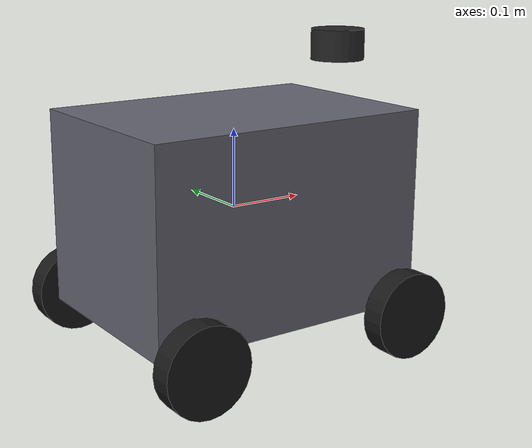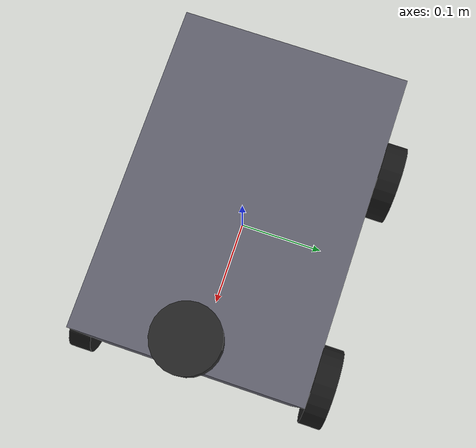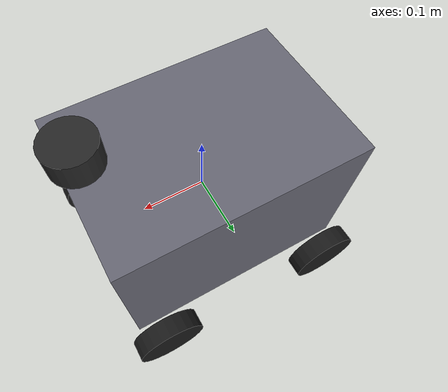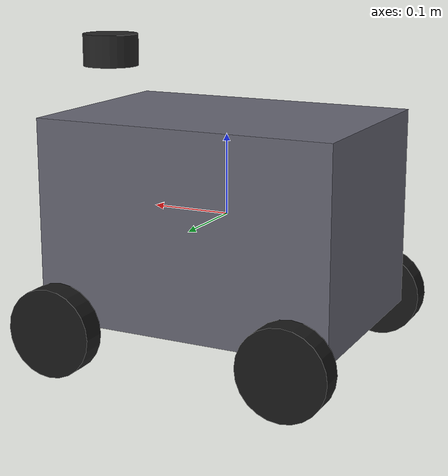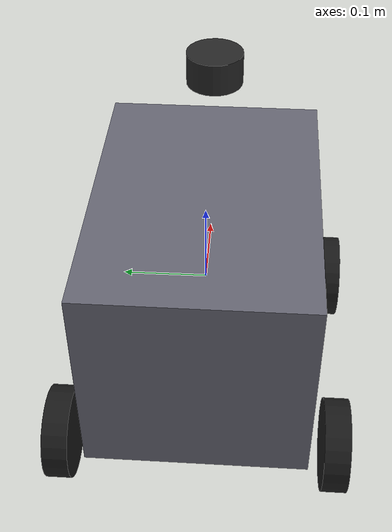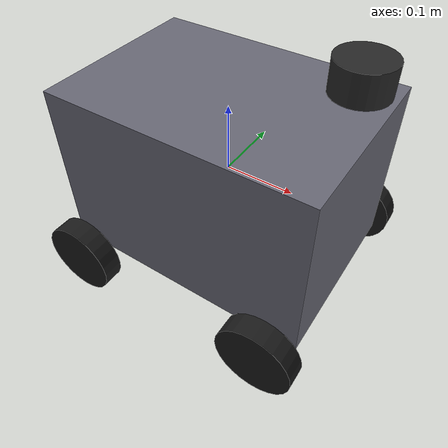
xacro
<?xml version="1.0"?>
<robot xmlns:xacro="http://www.ros.org/wiki/xacro" name="aiear">

  <!-- ================= AIEAR geometry (EDIT to match your robot) ===== -->
  <!-- wheel_radius: 0.055 m assumed (110 mm DIAMETER wheel).            -->
  <!-- If your wheels really are 220 mm across, change to 0.110.         -->
  <xacro:property name="wheel_radius" value="0.055" />
  <xacro:property name="wheel_width" value="0.030" />
  <xacro:property name="wheel_separation" value="0.323" />  <!-- left-right -->
  <xacro:property name="wheel_base" value="0.300" />  <!-- front-rear: MEASURE -->
  <xacro:property name="body_length" value="0.375" />
  <xacro:property name="body_width" value="0.260" />
  <xacro:property name="body_height" value="0.250" />

  <!-- Lidar mount, measured from robot base (chassis bottom) -->
  <xacro:property name="lidar_x" value="0.163" />
  <xacro:property name="lidar_height" value="0.320" />

  <!-- ============================ base ============================== -->
  <link name="base_link">
    <visual>
      <geometry>
        <box size="${body_length} ${body_width} ${body_height}" />
      </geometry>
      <material name="grey">
        <color rgba="0.4 0.4 0.45 1" />
      </material>
    </visual>
    <collision>
      <geometry>
        <box size="${body_length} ${body_width} ${body_height}" />
      </geometry>
    </collision>
    <inertial>
      <mass value="4.0" />
      <inertia ixx="0.05" ixy="0" ixz="0" iyy="0.05" iyz="0" izz="0.05" />
    </inertial>
  </link>

  <!-- ====================== wheel macro ============================= -->
  <xacro:macro name="wheel" params="name x y">
    <link name="${name}_wheel">
      <visual>
        <origin rpy="${pi/2} 0 0" />
        <geometry>
          <cylinder radius="${wheel_radius}" length="${wheel_width}" />
        </geometry>
        <material name="black">
          <color rgba="0.1 0.1 0.1 1" />
        </material>
      </visual>
      <collision>
        <origin rpy="${pi/2} 0 0" />
        <geometry>
          <cylinder radius="${wheel_radius}" length="${wheel_width}" />
        </geometry>
      </collision>
      <inertial>
        <mass value="0.3" />
        <inertia ixx="0.001" ixy="0" ixz="0" iyy="0.001" iyz="0" izz="0.001" />
      </inertial>
    </link>
    <joint name="${name}_wheel_joint" type="continuous">
      <parent link="base_link" />
      <child link="${name}_wheel" />
      <origin xyz="${x} ${y} ${-body_height/2}" />
      <axis xyz="0 1 0" />
    </joint>
  </xacro:macro>

  <xacro:wheel name="front_left" x="${wheel_base/2}" y="${wheel_separation/2}" />
  <xacro:wheel name="rear_left" x="${-wheel_base/2}" y="${wheel_separation/2}" />
  <xacro:wheel name="front_right" x="${wheel_base/2}" y="${-wheel_separation/2}" />
  <xacro:wheel name="rear_right" x="${-wheel_base/2}" y="${-wheel_separation/2}" />

  <!-- ========================= RPLIDAR =============================== -->
  <link name="laser">
    <visual>
      <geometry>
        <cylinder radius="0.035" length="0.04" />
      </geometry>
      <material name="dark">
        <color rgba="0.15 0.15 0.15 1" />
      </material>
    </visual>
  </link>
  <joint name="laser_joint" type="fixed">
    <parent link="base_link"/>
    <child link="laser"/>
    <origin xyz="0.163 0 ${0.32 - body_height/2}" rpy="0 0 3.14159"/>
  </joint>

  <!-- ======================= ros2_control =========================== -->
  <ros2_control name="AiearSystem" type="system">
    <hardware>
      <plugin>aiear_hardware/AiearSystem</plugin>
      <param name="device">/dev/aiear_esp32</param>   <!-- udev rule later -->
      <param name="baud_rate">115200</param>
      <param name="counts_per_rev">618</param>
      <param name="reply_timeout_ms">25</param>
      <param name="fl_joint">front_left_wheel_joint</param>
      <param name="rl_joint">rear_left_wheel_joint</param>
      <param name="fr_joint">front_right_wheel_joint</param>
      <param name="rr_joint">rear_right_wheel_joint</param>
    </hardware>

    <joint name="front_left_wheel_joint">
      <command_interface name="velocity" />
      <state_interface name="position" />
      <state_interface name="velocity" />
    </joint>
    <joint name="rear_left_wheel_joint">
      <command_interface name="velocity" />
      <state_interface name="position" />
      <state_interface name="velocity" />
    </joint>
    <joint name="front_right_wheel_joint">
      <command_interface name="velocity" />
      <state_interface name="position" />
      <state_interface name="velocity" />
    </joint>
    <joint name="rear_right_wheel_joint">
      <command_interface name="velocity" />
      <state_interface name="position" />
      <state_interface name="velocity" />
    </joint>
  </ros2_control>

</robot>
